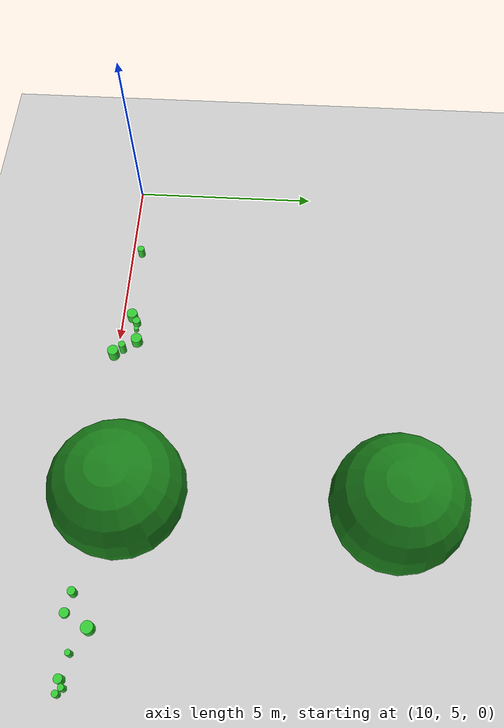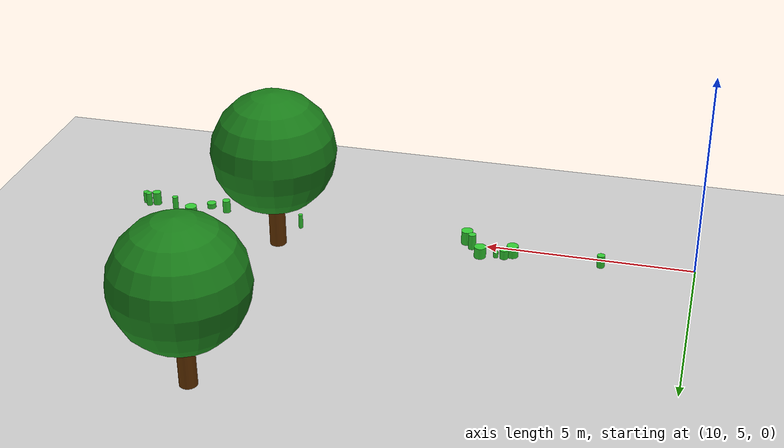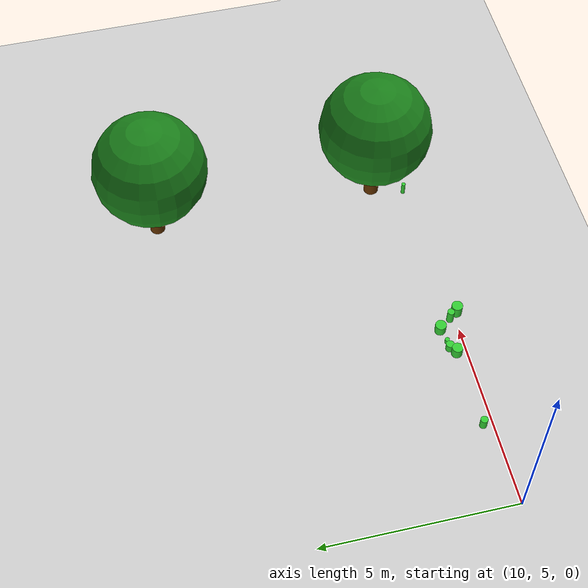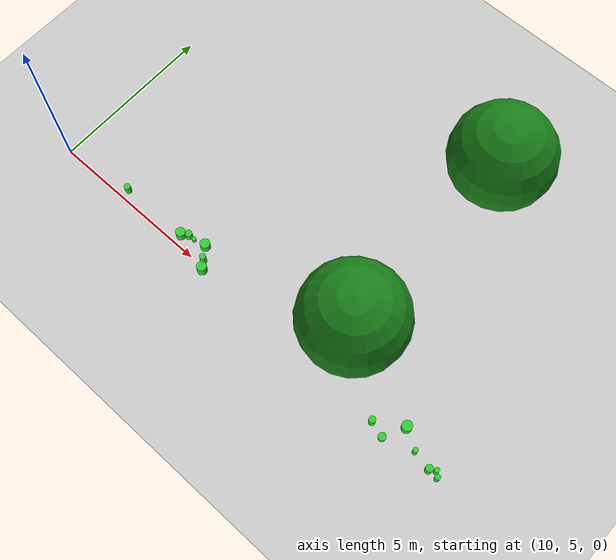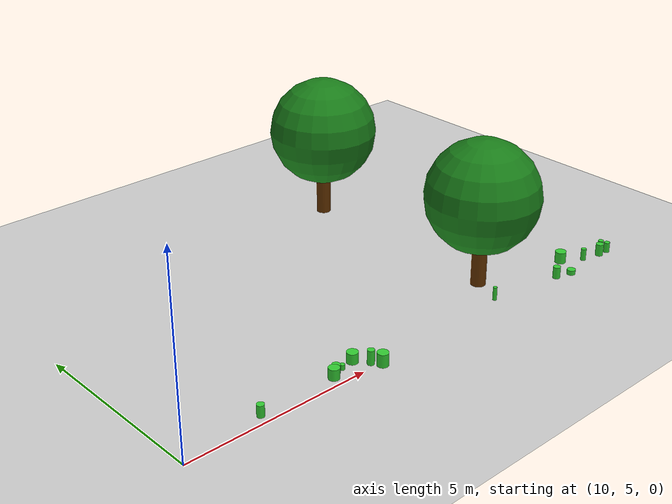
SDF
<sdf version="1.6">
 <world name="street_park_world">
  <include><uri>model://sun</uri></include>
  <include><uri>model://ground_plane</uri></include>
  <model name="tree_24">
   <pose>20 6 0 0 0 0</pose>
   <static>true</static>
   <link name="trunk">
    <pose>0 0 1 0 0 0</pose>
    <collision name="collision">
     <geometry><cylinder><radius>0.2</radius><length>2</length></cylinder></geometry>
    </collision>
    <visual name="visual">
     <geometry><cylinder><radius>0.2</radius><length>2</length></cylinder></geometry>
     <material><ambient>0.4 0.2 0.0 1</ambient></material>
    </visual>
   </link>
   <link name="leaves">
    <pose>0 0 2.5 0 0 0</pose>
    <collision name="collision"><geometry><sphere><radius>1.5</radius></sphere></geometry></collision>
    <visual name="visual">
     <geometry><sphere><radius>1.5</radius></sphere></geometry>
     <material><ambient>0.1 0.5 0.1 1</ambient></material>
    </visual>
   </link>
  </model>
  <model name="tree_26">
   <pose>20 12 0 0 0 0</pose>
   <static>true</static>
   <link name="trunk">
    <pose>0 0 1 0 0 0</pose>
    <collision name="collision">
     <geometry><cylinder><radius>0.2</radius><length>2</length></cylinder></geometry>
    </collision>
    <visual name="visual">
     <geometry><cylinder><radius>0.2</radius><length>2</length></cylinder></geometry>
     <material><ambient>0.4 0.2 0.0 1</ambient></material>
    </visual>
   </link>
   <link name="leaves">
    <pose>0 0 2.5 0 0 0</pose>
    <collision name="collision"><geometry><sphere><radius>1.5</radius></sphere></geometry></collision>
    <visual name="visual">
     <geometry><sphere><radius>1.5</radius></sphere></geometry>
     <material><ambient>0.1 0.5 0.1 1</ambient></material>
    </visual>
   </link>
  </model>
  <model name="weed_30">
   <pose>23.625972006763618 4.855130642167476 0.16679397179458377 0 0 0</pose>
   <static>true</static>
   <link name="link">
    <collision name="collision">
     <geometry>
      <cylinder><radius>0.10303536721951775</radius><length>0.33358794358916755</length></cylinder>
     </geometry>
    </collision>
    <visual name="visual">
     <geometry>
      <cylinder><radius>0.10303536721951775</radius><length>0.33358794358916755</length></cylinder>
     </geometry>
     <material><ambient>0.2 0.8 0.2 1</ambient></material>
    </visual>
   </link>
  </model>
  <model name="weed_68">
   <pose>14.704984346946958 5.414502005497946 0.07014366715900516 0 0 0</pose>
   <static>true</static>
   <link name="link">
    <collision name="collision">
     <geometry>
      <cylinder><radius>0.061542867041910226</radius><length>0.14028733431801033</length></cylinder>
     </geometry>
    </collision>
    <visual name="visual">
     <geometry>
      <cylinder><radius>0.061542867041910226</radius><length>0.14028733431801033</length></cylinder>
     </geometry>
     <material><ambient>0.2 0.8 0.2 1</ambient></material>
    </visual>
   </link>
  </model>
  <model name="weed_110">
   <pose>15.081995932771783 5.483049434293028 0.13931784777041298 0 0 0</pose>
   <static>true</static>
   <link name="link">
    <collision name="collision">
     <geometry>
      <cylinder><radius>0.1450039608443156</radius><length>0.27863569554082596</length></cylinder>
     </geometry>
    </collision>
    <visual name="visual">
     <geometry>
      <cylinder><radius>0.1450039608443156</radius><length>0.27863569554082596</length></cylinder>
     </geometry>
     <material><ambient>0.2 0.8 0.2 1</ambient></material>
    </visual>
   </link>
  </model>
  <model name="weed_114">
   <pose>23.92323158674489 4.829819737959175 0.1440122655472672 0 0 0</pose>
   <static>true</static>
   <link name="link">
    <collision name="collision">
     <geometry>
      <cylinder><radius>0.07745974469175383</radius><length>0.2880245310945344</length></cylinder>
     </geometry>
    </collision>
    <visual name="visual">
     <geometry>
      <cylinder><radius>0.07745974469175383</radius><length>0.2880245310945344</length></cylinder>
     </geometry>
     <material><ambient>0.2 0.8 0.2 1</ambient></material>
    </visual>
   </link>
  </model>
  <model name="weed_142">
   <pose>12.202659549130132 5.260190235403441 0.15609629655591156 0 0 0</pose>
   <static>true</static>
   <link name="link">
    <collision name="collision">
     <geometry>
      <cylinder><radius>0.09354871450076771</radius><length>0.3121925931118231</length></cylinder>
     </geometry>
    </collision>
    <visual name="visual">
     <geometry>
      <cylinder><radius>0.09354871450076771</radius><length>0.3121925931118231</length></cylinder>
     </geometry>
     <material><ambient>0.2 0.8 0.2 1</ambient></material>
    </visual>
   </link>
  </model>
  <model name="weed_166">
   <pose>23.79991007935749 4.948844711740148 0.16861112447651294 0 0 0</pose>
   <static>true</static>
   <link name="link">
    <collision name="collision">
     <geometry>
      <cylinder><radius>0.07256871370650346</radius><length>0.3372222489530259</length></cylinder>
     </geometry>
    </collision>
    <visual name="visual">
     <geometry>
      <cylinder><radius>0.07256871370650346</radius><length>0.3372222489530259</length></cylinder>
     </geometry>
     <material><ambient>0.2 0.8 0.2 1</ambient></material>
    </visual>
   </link>
  </model>
  <model name="weed_174">
   <pose>14.506473856803105 5.4071358418237185 0.11377084491563176 0 0 0</pose>
   <static>true</static>
   <link name="link">
    <collision name="collision">
     <geometry>
      <cylinder><radius>0.10445623787105787</radius><length>0.22754168983126352</length></cylinder>
     </geometry>
    </collision>
    <visual name="visual">
     <geometry>
      <cylinder><radius>0.10445623787105787</radius><length>0.22754168983126352</length></cylinder>
     </geometry>
     <material><ambient>0.2 0.8 0.2 1</ambient></material>
    </visual>
   </link>
  </model>
  <model name="weed_190">
   <pose>23.079883865001634 4.975572239003013 0.16399858040915255 0 0 0</pose>
   <static>true</static>
   <link name="link">
    <collision name="collision">
     <geometry>
      <cylinder><radius>0.07035582383502739</radius><length>0.3279971608183051</length></cylinder>
     </geometry>
    </collision>
    <visual name="visual">
     <geometry>
      <cylinder><radius>0.07035582383502739</radius><length>0.3279971608183051</length></cylinder>
     </geometry>
     <material><ambient>0.2 0.8 0.2 1</ambient></material>
    </visual>
   </link>
  </model>
  <model name="weed_212">
   <pose>19.684568270068468 5.163162533068109 0.18085745260978048 0 0 0</pose>
   <static>true</static>
   <link name="link">
    <collision name="collision">
     <geometry>
      <cylinder><radius>0.05358990998376866</radius><length>0.36171490521956096</length></cylinder>
     </geometry>
    </collision>
    <visual name="visual">
     <geometry>
      <cylinder><radius>0.05358990998376866</radius><length>0.36171490521956096</length></cylinder>
     </geometry>
     <material><ambient>0.2 0.8 0.2 1</ambient></material>
    </visual>
   </link>
  </model>
  <model name="weed_214">
   <pose>22.20897300641343 4.7075600606923755 0.0647664689574797 0 0 0</pose>
   <static>true</static>
   <link name="link">
    <collision name="collision">
     <geometry>
      <cylinder><radius>0.11337478287807913</radius><length>0.1295329379149594</length></cylinder>
     </geometry>
    </collision>
    <visual name="visual">
     <geometry>
      <cylinder><radius>0.11337478287807913</radius><length>0.1295329379149594</length></cylinder>
     </geometry>
     <material><ambient>0.2 0.8 0.2 1</ambient></material>
    </visual>
   </link>
  </model>
  <model name="weed_230">
   <pose>14.326338628507834 5.273671963747523 0.14423721555303476 0 0 0</pose>
   <static>true</static>
   <link name="link">
    <collision name="collision">
     <geometry>
      <cylinder><radius>0.1403403704072968</radius><length>0.2884744311060695</length></cylinder>
     </geometry>
    </collision>
    <visual name="visual">
     <geometry>
      <cylinder><radius>0.1403403704072968</radius><length>0.2884744311060695</length></cylinder>
     </geometry>
     <material><ambient>0.2 0.8 0.2 1</ambient></material>
    </visual>
   </link>
  </model>
  <model name="weed_240">
   <pose>15.510671761591183 4.918384128313033 0.17336259518401614 0 0 0</pose>
   <static>true</static>
   <link name="link">
    <collision name="collision">
     <geometry>
      <cylinder><radius>0.14402918917795543</radius><length>0.3467251903680323</length></cylinder>
     </geometry>
    </collision>
    <visual name="visual">
     <geometry>
      <cylinder><radius>0.14402918917795543</radius><length>0.3467251903680323</length></cylinder>
     </geometry>
     <material><ambient>0.2 0.8 0.2 1</ambient></material>
    </visual>
   </link>
  </model>
  <model name="weed_246">
   <pose>15.343759696515413 5.1403961701324405 0.19189611286691483 0 0 0</pose>
   <static>true</static>
   <link name="link">
    <collision name="collision">
     <geometry>
      <cylinder><radius>0.09191267534147228</radius><length>0.38379222573382965</length></cylinder>
     </geometry>
    </collision>
    <visual name="visual">
     <geometry>
      <cylinder><radius>0.09191267534147228</radius><length>0.38379222573382965</length></cylinder>
     </geometry>
     <material><ambient>0.2 0.8 0.2 1</ambient></material>
    </visual>
   </link>
  </model>
  <model name="weed_260">
   <pose>21.75462512587346 4.836519737237014 0.16184979125509938 0 0 0</pose>
   <static>true</static>
   <link name="link">
    <collision name="collision">
     <geometry>
      <cylinder><radius>0.09762459654232503</radius><length>0.32369958251019876</length></cylinder>
     </geometry>
    </collision>
    <visual name="visual">
     <geometry>
      <cylinder><radius>0.09762459654232503</radius><length>0.32369958251019876</length></cylinder>
     </geometry>
     <material><ambient>0.2 0.8 0.2 1</ambient></material>
    </visual>
   </link>
  </model>
  <model name="weed_276">
   <pose>22.525582522633044 5.315329008416691 0.15815910181192244 0 0 0</pose>
   <static>true</static>
   <link name="link">
    <collision name="collision">
     <geometry>
      <cylinder><radius>0.14683986253114745</radius><length>0.3163182036238449</length></cylinder>
     </geometry>
    </collision>
    <visual name="visual">
     <geometry>
      <cylinder><radius>0.14683986253114745</radius><length>0.3163182036238449</length></cylinder>
     </geometry>
     <material><ambient>0.2 0.8 0.2 1</ambient></material>
    </visual>
   </link>
  </model>
 </world>
</sdf>
